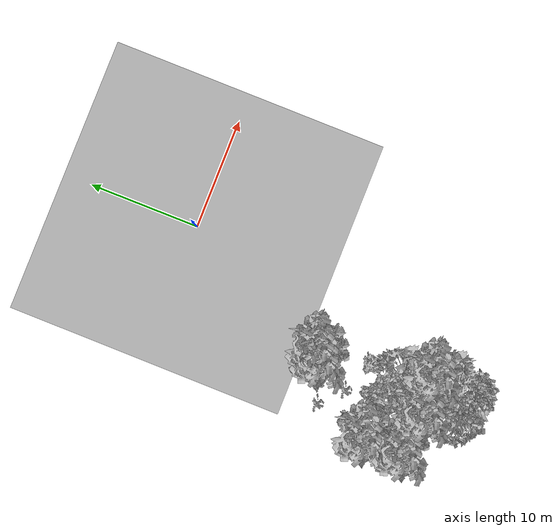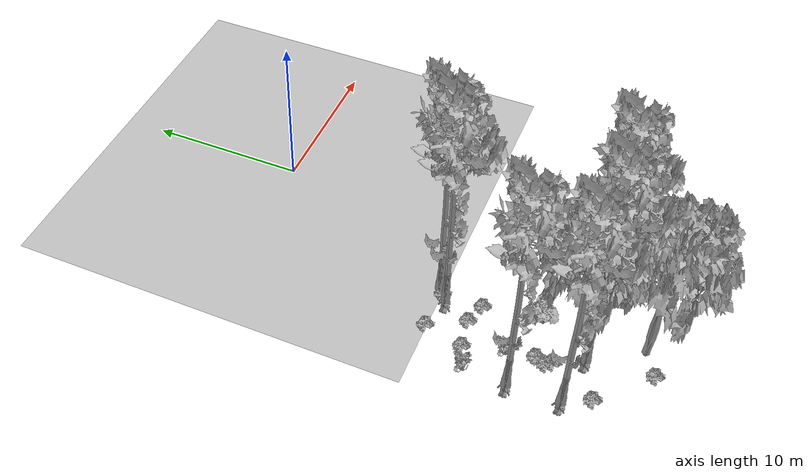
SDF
<sdf version="1.7">
 <world name="default">
  <model name="ground_plane">
   <static>1</static>
   <link name="link">
    <collision name="collision">
     <pose>-50 0 0 0 -0 0</pose>
     <geometry><plane><normal>0 0 1</normal><size>80 80</size></plane></geometry>
     <surface><contact><ode><min_depth>0.01</min_depth><max_vel>0</max_vel></ode></contact></surface>
    </collision>
    <visual name="grass">
     <cast_shadows>0</cast_shadows>
     <geometry>
      <mesh>
       <scale>0.46714285714285714 0.46714285714285714 0.1</scale>
       <uri>file://grass_plane/meshes/grass_plane.dae</uri>
      </mesh>
     </geometry>
    </visual>
   </link>
  </model>
  <model name="Tree 242">
   <static>1</static>
   <pose>-4.135385754076431 -21.431212353411535 0 1.57079 -0 0</pose>
   <link name="link">
    <collision name="collision">
     <geometry><mesh><scale>3.5 5 3.5</scale><uri>model://tree_9/meshes/tree_9.obj</uri></mesh></geometry>
    </collision>
    <visual name="visual">
     <geometry><mesh><scale>3.5 5 3.5</scale><uri>model://tree_9/meshes/tree_9.obj</uri></mesh></geometry>
    </visual>
   </link>
  </model>
  <model name="Tree 256">
   <static>1</static>
   <pose>-5.331647232256195 -24.70186899344884 0 1.57079 -0 0</pose>
   <link name="link">
    <collision name="collision">
     <geometry><mesh><scale>3.5 5 3.5</scale><uri>model://tree_2/meshes/tree_2.obj</uri></mesh></geometry>
    </collision>
    <visual name="visual">
     <geometry><mesh><scale>3.5 5 3.5</scale><uri>model://tree_2/meshes/tree_2.obj</uri></mesh></geometry>
    </visual>
   </link>
  </model>
  <model name="Tree 301">
   <static>1</static>
   <pose>-5.574996704105629 -12.376737517713032 0 1.57079 -0 0</pose>
   <link name="link">
    <collision name="collision">
     <geometry><mesh><scale>3.5 5 3.5</scale><uri>model://tree_9/meshes/tree_9.obj</uri></mesh></geometry>
    </collision>
    <visual name="visual">
     <geometry><mesh><scale>3.5 5 3.5</scale><uri>model://tree_9/meshes/tree_9.obj</uri></mesh></geometry>
    </visual>
   </link>
  </model>
  <model name="Tree 375">
   <static>1</static>
   <pose>-6.3235540167163435 -13.006489203103769 0 1.57079 -0 0</pose>
   <link name="link">
    <collision name="collision">
     <geometry><mesh><scale>3.5 5 3.5</scale><uri>model://tree_9/meshes/tree_9.obj</uri></mesh></geometry>
    </collision>
    <visual name="visual">
     <geometry><mesh><scale>3.5 5 3.5</scale><uri>model://tree_9/meshes/tree_9.obj</uri></mesh></geometry>
    </visual>
   </link>
  </model>
  <model name="Tree 403">
   <static>1</static>
   <pose>-6.378707291302845 -20.912328358413525 0 1.57079 -0 0</pose>
   <link name="link">
    <collision name="collision">
     <geometry><mesh><scale>3.5 5 3.5</scale><uri>model://tree_2/meshes/tree_2.obj</uri></mesh></geometry>
    </collision>
    <visual name="visual">
     <geometry><mesh><scale>3.5 5 3.5</scale><uri>model://tree_2/meshes/tree_2.obj</uri></mesh></geometry>
    </visual>
   </link>
  </model>
  <model name="Tree 482">
   <static>1</static>
   <pose>-10.416019818815094 -21.192543439391383 0 1.57079 -0 0</pose>
   <link name="link">
    <collision name="collision">
     <geometry><mesh><scale>3.5 5 3.5</scale><uri>model://tree_9/meshes/tree_9.obj</uri></mesh></geometry>
    </collision>
    <visual name="visual">
     <geometry><mesh><scale>3.5 5 3.5</scale><uri>model://tree_9/meshes/tree_9.obj</uri></mesh></geometry>
    </visual>
   </link>
  </model>
  <model name="Tree 520">
   <static>1</static>
   <pose>-7.167867244160732 -21.706308331706925 0 1.57079 -0 0</pose>
   <link name="link">
    <collision name="collision">
     <geometry><mesh><scale>3.5 5 3.5</scale><uri>model://tree_9/meshes/tree_9.obj</uri></mesh></geometry>
    </collision>
    <visual name="visual">
     <geometry><mesh><scale>3.5 5 3.5</scale><uri>model://tree_9/meshes/tree_9.obj</uri></mesh></geometry>
    </visual>
   </link>
  </model>
  <model name="Tree 637">
   <static>1</static>
   <pose>-10.514039066749614 -18.09355722917929 0 1.57079 -0 0</pose>
   <link name="link">
    <collision name="collision">
     <geometry><mesh><scale>3.5 5 3.5</scale><uri>model://tree_9/meshes/tree_9.obj</uri></mesh></geometry>
    </collision>
    <visual name="visual">
     <geometry><mesh><scale>3.5 5 3.5</scale><uri>model://tree_9/meshes/tree_9.obj</uri></mesh></geometry>
    </visual>
   </link>
  </model>
  <model name="Bush 66">
   <static>1</static>
   <pose>-8.262490723969119 -19.688229376699084 0 1.57079 -0 0</pose>
   <link name="link">
    <collision name="collision">
     <geometry><mesh><scale>2 2 2</scale><uri>model://bush_2/meshes/bush_2.obj</uri></mesh></geometry>
     <surface><contact><collide_without_contact>false</collide_without_contact></contact></surface>
    </collision>
    <visual name="visual">
     <geometry><mesh><scale>2 2 2</scale><uri>model://bush_2/meshes/bush_2.obj</uri></mesh></geometry>
    </visual>
   </link>
  </model>
  <model name="Bush 157">
   <static>1</static>
   <pose>-8.92761108741837 -14.951972307891896 0 1.57079 -0 0</pose>
   <link name="link">
    <collision name="collision">
     <geometry><mesh><scale>2 2 2</scale><uri>model://bush_2/meshes/bush_2.obj</uri></mesh></geometry>
     <surface><contact><collide_without_contact>false</collide_without_contact></contact></surface>
    </collision>
    <visual name="visual">
     <geometry><mesh><scale>2 2 2</scale><uri>model://bush_2/meshes/bush_2.obj</uri></mesh></geometry>
    </visual>
   </link>
  </model>
  <model name="Bush 160">
   <static>1</static>
   <pose>-5.516277198319379 -18.76192004525551 0 1.57079 -0 0</pose>
   <link name="link">
    <collision name="collision">
     <geometry><mesh><scale>2 2 2</scale><uri>model://bush_1/meshes/bush_1.obj</uri></mesh></geometry>
     <surface><contact><collide_without_contact>false</collide_without_contact></contact></surface>
    </collision>
    <visual name="visual">
     <geometry><mesh><scale>2 2 2</scale><uri>model://bush_1/meshes/bush_1.obj</uri></mesh></geometry>
    </visual>
   </link>
  </model>
  <model name="Bush 241">
   <static>1</static>
   <pose>-7.111974102253189 -14.702123700810503 0 1.57079 -0 0</pose>
   <link name="link">
    <collision name="collision">
     <geometry><mesh><scale>2 2 2</scale><uri>model://bush_2/meshes/bush_2.obj</uri></mesh></geometry>
     <surface><contact><collide_without_contact>false</collide_without_contact></contact></surface>
    </collision>
    <visual name="visual">
     <geometry><mesh><scale>2 2 2</scale><uri>model://bush_2/meshes/bush_2.obj</uri></mesh></geometry>
    </visual>
   </link>
  </model>
  <model name="Bush 249">
   <static>1</static>
   <pose>-8.432133791518183 -17.3468033736445 0 1.57079 -0 0</pose>
   <link name="link">
    <collision name="collision">
     <geometry><mesh><scale>2 2 2</scale><uri>model://bush_4/meshes/bush_4.obj</uri></mesh></geometry>
     <surface><contact><collide_without_contact>false</collide_without_contact></contact></surface>
    </collision>
    <visual name="visual">
     <geometry><mesh><scale>2 2 2</scale><uri>model://bush_4/meshes/bush_4.obj</uri></mesh></geometry>
    </visual>
   </link>
  </model>
  <model name="Bush 269">
   <static>1</static>
   <pose>-9.509131540746637 -22.749503532648284 0 1.57079 -0 0</pose>
   <link name="link">
    <collision name="collision">
     <geometry><mesh><scale>2 2 2</scale><uri>model://bush_2/meshes/bush_2.obj</uri></mesh></geometry>
     <surface><contact><collide_without_contact>false</collide_without_contact></contact></surface>
    </collision>
    <visual name="visual">
     <geometry><mesh><scale>2 2 2</scale><uri>model://bush_2/meshes/bush_2.obj</uri></mesh></geometry>
    </visual>
   </link>
  </model>
  <model name="Bush 272">
   <static>1</static>
   <pose>-8.011642736215649 -20.03384417073005 0 1.57079 -0 0</pose>
   <link name="link">
    <collision name="collision">
     <geometry><mesh><scale>2 2 2</scale><uri>model://bush_2/meshes/bush_2.obj</uri></mesh></geometry>
     <surface><contact><collide_without_contact>false</collide_without_contact></contact></surface>
    </collision>
    <visual name="visual">
     <geometry><mesh><scale>2 2 2</scale><uri>model://bush_2/meshes/bush_2.obj</uri></mesh></geometry>
    </visual>
   </link>
  </model>
  <model name="Bush 311">
   <static>1</static>
   <pose>-5.388577107468485 -18.252996415181173 0 1.57079 -0 0</pose>
   <link name="link">
    <collision name="collision">
     <geometry><mesh><scale>2 2 2</scale><uri>model://bush_4/meshes/bush_4.obj</uri></mesh></geometry>
     <surface><contact><collide_without_contact>false</collide_without_contact></contact></surface>
    </collision>
    <visual name="visual">
     <geometry><mesh><scale>2 2 2</scale><uri>model://bush_4/meshes/bush_4.obj</uri></mesh></geometry>
    </visual>
   </link>
  </model>
  <model name="Bush 331">
   <static>1</static>
   <pose>-10.398042824115215 -15.490673891033602 0 1.57079 -0 0</pose>
   <link name="link">
    <collision name="collision">
     <geometry><mesh><scale>2 2 2</scale><uri>model://bush_4/meshes/bush_4.obj</uri></mesh></geometry>
     <surface><contact><collide_without_contact>false</collide_without_contact></contact></surface>
    </collision>
    <visual name="visual">
     <geometry><mesh><scale>2 2 2</scale><uri>model://bush_4/meshes/bush_4.obj</uri></mesh></geometry>
    </visual>
   </link>
  </model>
  <model name="Bush 382">
   <static>1</static>
   <pose>-5.791565766102977 -15.14609090332062 0 1.57079 -0 0</pose>
   <link name="link">
    <collision name="collision">
     <geometry><mesh><scale>2 2 2</scale><uri>model://bush_2/meshes/bush_2.obj</uri></mesh></geometry>
     <surface><contact><collide_without_contact>false</collide_without_contact></contact></surface>
    </collision>
    <visual name="visual">
     <geometry><mesh><scale>2 2 2</scale><uri>model://bush_2/meshes/bush_2.obj</uri></mesh></geometry>
    </visual>
   </link>
  </model>
  <model name="Bush 477">
   <static>1</static>
   <pose>-6.6420608873718905 -25.54750363490223 0 1.57079 -0 0</pose>
   <link name="link">
    <collision name="collision">
     <geometry><mesh><scale>2 2 2</scale><uri>model://bush_2/meshes/bush_2.obj</uri></mesh></geometry>
     <surface><contact><collide_without_contact>false</collide_without_contact></contact></surface>
    </collision>
    <visual name="visual">
     <geometry><mesh><scale>2 2 2</scale><uri>model://bush_2/meshes/bush_2.obj</uri></mesh></geometry>
    </visual>
   </link>
  </model>
  <model name="Bush 478">
   <static>1</static>
   <pose>-5.817913028820705 -12.65613349927035 0 1.57079 -0 0</pose>
   <link name="link">
    <collision name="collision">
     <geometry><mesh><scale>2 2 2</scale><uri>model://bush_2/meshes/bush_2.obj</uri></mesh></geometry>
     <surface><contact><collide_without_contact>false</collide_without_contact></contact></surface>
    </collision>
    <visual name="visual">
     <geometry><mesh><scale>2 2 2</scale><uri>model://bush_2/meshes/bush_2.obj</uri></mesh></geometry>
    </visual>
   </link>
  </model>
  <model name="Bush 593">
   <static>1</static>
   <pose>-7.988051581921862 -19.041435827626174 0 1.57079 -0 0</pose>
   <link name="link">
    <collision name="collision">
     <geometry><mesh><scale>2 2 2</scale><uri>model://bush_2/meshes/bush_2.obj</uri></mesh></geometry>
     <surface><contact><collide_without_contact>false</collide_without_contact></contact></surface>
    </collision>
    <visual name="visual">
     <geometry><mesh><scale>2 2 2</scale><uri>model://bush_2/meshes/bush_2.obj</uri></mesh></geometry>
    </visual>
   </link>
  </model>
  <model name="Bush 612">
   <static>1</static>
   <pose>-8.33556728786883 -12.510081711287953 0 1.57079 -0 0</pose>
   <link name="link">
    <collision name="collision">
     <geometry><mesh><scale>2 2 2</scale><uri>model://bush_2/meshes/bush_2.obj</uri></mesh></geometry>
     <surface><contact><collide_without_contact>false</collide_without_contact></contact></surface>
    </collision>
    <visual name="visual">
     <geometry><mesh><scale>2 2 2</scale><uri>model://bush_2/meshes/bush_2.obj</uri></mesh></geometry>
    </visual>
   </link>
  </model>
 </world>
</sdf>
